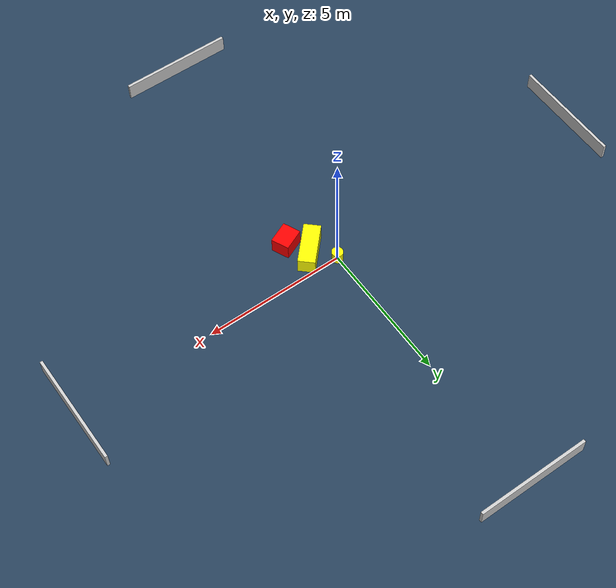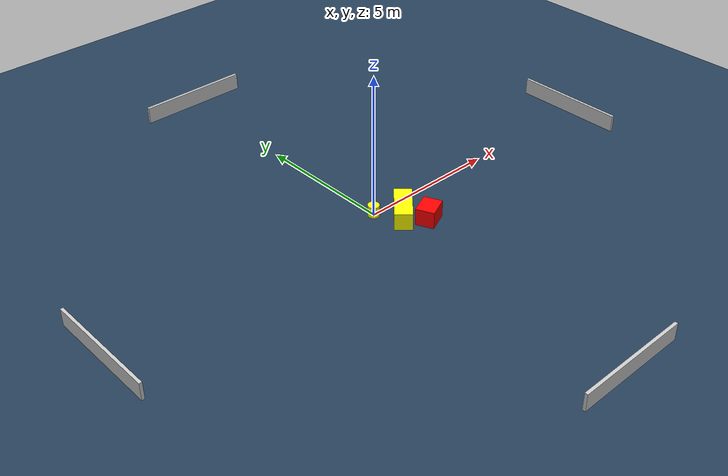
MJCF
<?xml version="1.0" ?>
<mujoco model="generated_environment">
  <option timestep="0.01" integrator="RK4" cone="elliptic"/>
  <default>
    <geom density="1"/>
  </default>
  <asset>
    <texture builtin="gradient" height="3072" name="skybox" rgb1="0.3 0.5 0.7" rgb2="0 0 0" type="skybox" width="512"/>
    <texture builtin="checker" height="300" name="groundplane" rgb1="0.2 0.3 0.4" rgb2="0.1 0.2 0.3" type="2d" width="300"/>
    <material name="groundplane" reflectance="0.2" texrepeat="5 5" texture="groundplane"/>
  </asset>
  <worldbody>
    <light dir="0 0 -1" directional="true" pos="0 0 1.5"/>
    <geom condim="3" friction="0.5 0.005 0.001" material="groundplane" name="floor" pos="0 0 0" size="0 0 0.05" type="plane"/>
    <body name="walls">
      <geom name="wall_1" condim="4" pos="-10.0 0.0 0.3" rgba="0.800000011920929 0.800000011920929 0.800000011920929 1.0" size="0.05 2.0 0.3" type="box"/>
      <geom name="wall_2" condim="4" pos="10.0 0.0 0.3" rgba="0.800000011920929 0.800000011920929 0.800000011920929 1.0" size="0.05 2.0 0.3" type="box"/>
      <geom name="wall_3" condim="4" pos="0.0 -10.0 0.3" rgba="0.800000011920929 0.800000011920929 0.800000011920929 1.0" size="2.0 0.05 0.3" type="box"/>
      <geom name="wall_4" condim="4" pos="0.0 10.0 0.3" rgba="0.800000011920929 0.800000011920929 0.800000011920929 1.0" size="2.0 0.05 0.3" type="box"/>
    </body>
    <body name="robot">
      <joint name="joint_x" type="slide" pos="0 0 0" axis="1 0 0"/>
      <joint name="joint_y" type="slide" pos="0 0 0" axis="0 1 0"/>
      <geom name="robot" type="cylinder" pos="0.0 0.0 0.2" size="0.2 0.2 0.0" mass="5.0" friction="1.0 0.005 0.0001" condim="4" rgba="1.0 1.0 0.0 1.0"/>
    </body>
    <body name="obstacle_1_movable">
      <geom name="obstacle_1_movable" condim="4" pos="0.629676897051475 -0.7142898434344969 0.3" euler="0 0 47.05277740275774" friction="0.0 0.005 0.001" rgba="1.0 1.0 0.0 1.0" size="0.7470359267099704 0.2977564238832835 0.3" type="box" mass="0.1"/>
      <joint type="free"/>
    </body>
    <body name="obstacle_2_static">
      <geom name="obstacle_2_static" condim="4" pos="1.0935048574665933 -1.4136366651412289 0.3" euler="0 0 114.07503805011403" friction="0.0 0.005 0.001" rgba="1.0 0.0 0.0 1.0" size="0.3203062178854973 0.38824210765789463 0.3" type="box"/>
    </body>
  </worldbody>
  <actuator>
    <motor name="actuator_x" joint="joint_x" gear="1" ctrlrange="-1 1"/>
    <motor name="actuator_y" joint="joint_y" gear="1" ctrlrange="-1 1"/>
  </actuator>
</mujoco>
